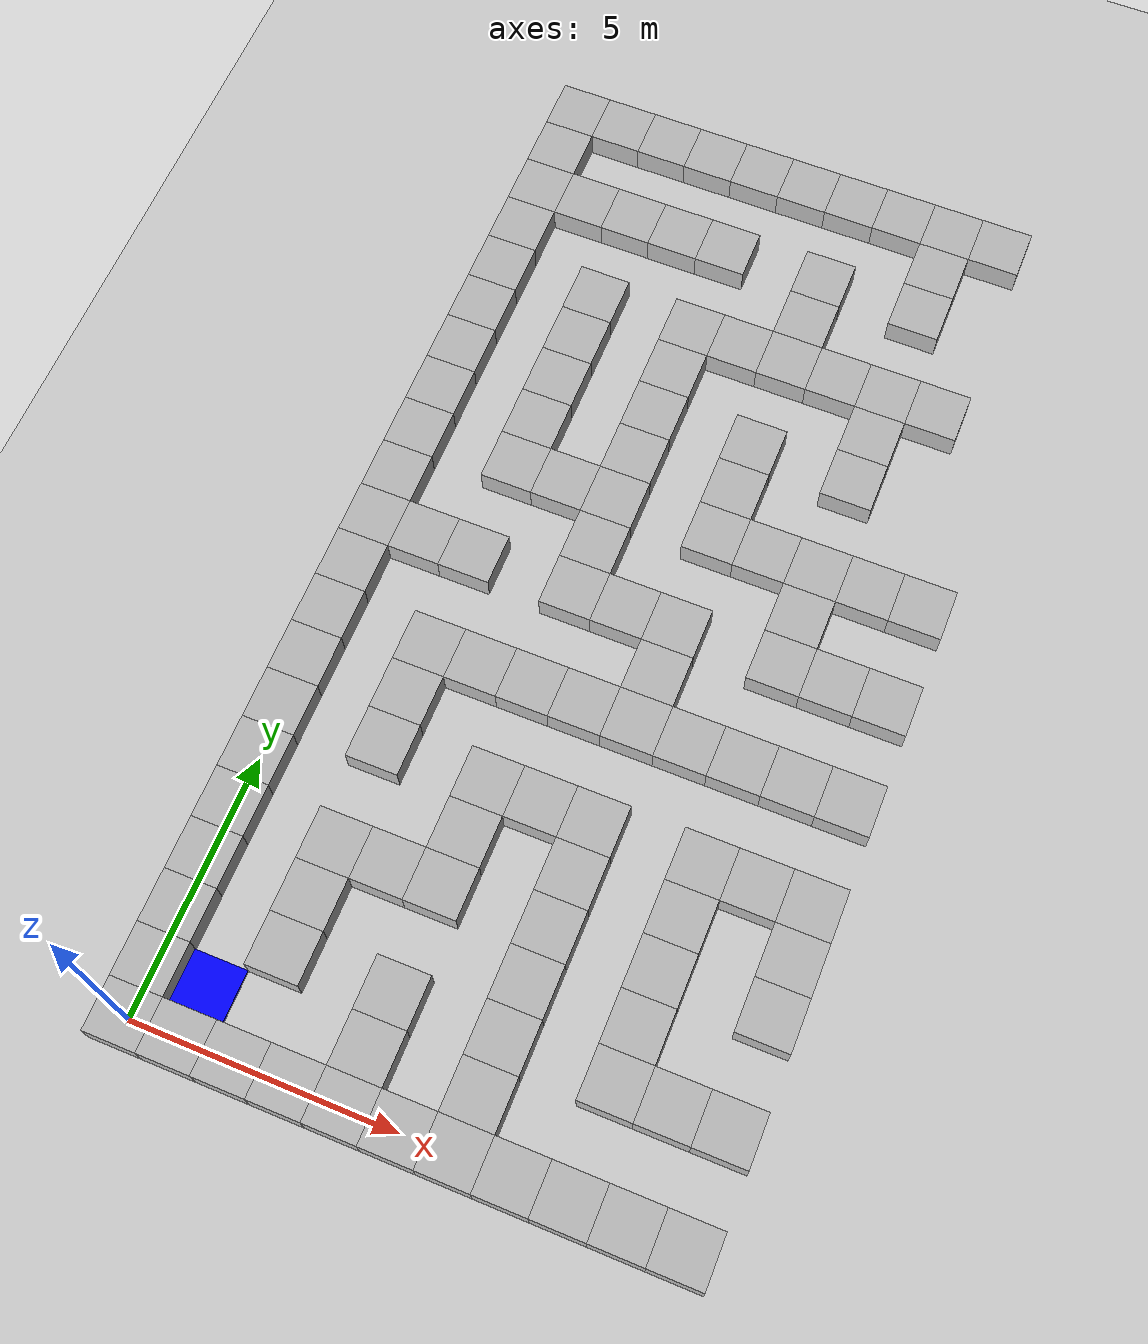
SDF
<sdf version="1.7">
 <world name="maze_world">
  <include><uri>model://ground_plane</uri></include>
  <include><uri>model://sun</uri></include>
  <model name="wall_0_0">
   <static>true</static>
   <link name="link">
    <collision name="collision"><geometry><box><size>1 1 1</size></box></geometry></collision>
    <visual name="visual"><geometry><box><size>1 1 1</size></box></geometry></visual>
   </link>
  </model>
  <model name="wall_1_0">
   <static>true</static>
   <pose>1 0 0 0 0 0</pose>
   <link name="link">
    <collision name="collision"><geometry><box><size>1 1 1</size></box></geometry></collision>
    <visual name="visual"><geometry><box><size>1 1 1</size></box></geometry></visual>
   </link>
  </model>
  <model name="wall_2_0">
   <static>true</static>
   <pose>2 0 0 0 0 0</pose>
   <link name="link">
    <collision name="collision"><geometry><box><size>1 1 1</size></box></geometry></collision>
    <visual name="visual"><geometry><box><size>1 1 1</size></box></geometry></visual>
   </link>
  </model>
  <model name="wall_3_0">
   <static>true</static>
   <pose>3 0 0 0 0 0</pose>
   <link name="link">
    <collision name="collision"><geometry><box><size>1 1 1</size></box></geometry></collision>
    <visual name="visual"><geometry><box><size>1 1 1</size></box></geometry></visual>
   </link>
  </model>
  <model name="wall_4_0">
   <static>true</static>
   <pose>4 0 0 0 0 0</pose>
   <link name="link">
    <collision name="collision"><geometry><box><size>1 1 1</size></box></geometry></collision>
    <visual name="visual"><geometry><box><size>1 1 1</size></box></geometry></visual>
   </link>
  </model>
  <model name="wall_5_0">
   <static>true</static>
   <pose>5 0 0 0 0 0</pose>
   <link name="link">
    <collision name="collision"><geometry><box><size>1 1 1</size></box></geometry></collision>
    <visual name="visual"><geometry><box><size>1 1 1</size></box></geometry></visual>
   </link>
  </model>
  <model name="wall_6_0">
   <static>true</static>
   <pose>6 0 0 0 0 0</pose>
   <link name="link">
    <collision name="collision"><geometry><box><size>1 1 1</size></box></geometry></collision>
    <visual name="visual"><geometry><box><size>1 1 1</size></box></geometry></visual>
   </link>
  </model>
  <model name="wall_7_0">
   <static>true</static>
   <pose>7 0 0 0 0 0</pose>
   <link name="link">
    <collision name="collision"><geometry><box><size>1 1 1</size></box></geometry></collision>
    <visual name="visual"><geometry><box><size>1 1 1</size></box></geometry></visual>
   </link>
  </model>
  <model name="wall_8_0">
   <static>true</static>
   <pose>8 0 0 0 0 0</pose>
   <link name="link">
    <collision name="collision"><geometry><box><size>1 1 1</size></box></geometry></collision>
    <visual name="visual"><geometry><box><size>1 1 1</size></box></geometry></visual>
   </link>
  </model>
  <model name="wall_9_0">
   <static>true</static>
   <pose>9 0 0 0 0 0</pose>
   <link name="link">
    <collision name="collision"><geometry><box><size>1 1 1</size></box></geometry></collision>
    <visual name="visual"><geometry><box><size>1 1 1</size></box></geometry></visual>
   </link>
  </model>
  <model name="wall_10_0">
   <static>true</static>
   <pose>10 0 0 0 0 0</pose>
   <link name="link">
    <collision name="collision"><geometry><box><size>1 1 1</size></box></geometry></collision>
    <visual name="visual"><geometry><box><size>1 1 1</size></box></geometry></visual>
   </link>
  </model>
  <model name="wall_0_1">
   <static>true</static>
   <pose>0 1 0 0 0 0</pose>
   <link name="link">
    <collision name="collision"><geometry><box><size>1 1 1</size></box></geometry></collision>
    <visual name="visual"><geometry><box><size>1 1 1</size></box></geometry></visual>
   </link>
  </model>
  <model name="start_1_1">
   <static>true</static>
   <pose>1 1 0 0 0 0</pose>
   <link name="link">
    <collision name="collision"><geometry><box><size>1 1 0.001</size></box></geometry></collision>
    <visual name="visual">
     <geometry><box><size>1 1 0.1</size></box></geometry>
     <material><ambient>0 0 1 1</ambient></material>
    </visual>
   </link>
  </model>
  <model name="wall_4_1">
   <static>true</static>
   <pose>4 1 0 0 0 0</pose>
   <link name="link">
    <collision name="collision"><geometry><box><size>1 1 1</size></box></geometry></collision>
    <visual name="visual"><geometry><box><size>1 1 1</size></box></geometry></visual>
   </link>
  </model>
  <model name="wall_6_1">
   <static>true</static>
   <pose>6 1 0 0 0 0</pose>
   <link name="link">
    <collision name="collision"><geometry><box><size>1 1 1</size></box></geometry></collision>
    <visual name="visual"><geometry><box><size>1 1 1</size></box></geometry></visual>
   </link>
  </model>
  <model name="wall_0_2">
   <static>true</static>
   <pose>0 2 0 0 0 0</pose>
   <link name="link">
    <collision name="collision"><geometry><box><size>1 1 1</size></box></geometry></collision>
    <visual name="visual"><geometry><box><size>1 1 1</size></box></geometry></visual>
   </link>
  </model>
  <model name="wall_2_2">
   <static>true</static>
   <pose>2 2 0 0 0 0</pose>
   <link name="link">
    <collision name="collision"><geometry><box><size>1 1 1</size></box></geometry></collision>
    <visual name="visual"><geometry><box><size>1 1 1</size></box></geometry></visual>
   </link>
  </model>
  <model name="wall_4_2">
   <static>true</static>
   <pose>4 2 0 0 0 0</pose>
   <link name="link">
    <collision name="collision"><geometry><box><size>1 1 1</size></box></geometry></collision>
    <visual name="visual"><geometry><box><size>1 1 1</size></box></geometry></visual>
   </link>
  </model>
  <model name="wall_6_2">
   <static>true</static>
   <pose>6 2 0 0 0 0</pose>
   <link name="link">
    <collision name="collision"><geometry><box><size>1 1 1</size></box></geometry></collision>
    <visual name="visual"><geometry><box><size>1 1 1</size></box></geometry></visual>
   </link>
  </model>
  <model name="wall_8_2">
   <static>true</static>
   <pose>8 2 0 0 0 0</pose>
   <link name="link">
    <collision name="collision"><geometry><box><size>1 1 1</size></box></geometry></collision>
    <visual name="visual"><geometry><box><size>1 1 1</size></box></geometry></visual>
   </link>
  </model>
  <model name="wall_9_2">
   <static>true</static>
   <pose>9 2 0 0 0 0</pose>
   <link name="link">
    <collision name="collision"><geometry><box><size>1 1 1</size></box></geometry></collision>
    <visual name="visual"><geometry><box><size>1 1 1</size></box></geometry></visual>
   </link>
  </model>
  <model name="wall_10_2">
   <static>true</static>
   <pose>10 2 0 0 0 0</pose>
   <link name="link">
    <collision name="collision"><geometry><box><size>1 1 1</size></box></geometry></collision>
    <visual name="visual"><geometry><box><size>1 1 1</size></box></geometry></visual>
   </link>
  </model>
  <model name="wall_0_3">
   <static>true</static>
   <pose>0 3 0 0 0 0</pose>
   <link name="link">
    <collision name="collision"><geometry><box><size>1 1 1</size></box></geometry></collision>
    <visual name="visual"><geometry><box><size>1 1 1</size></box></geometry></visual>
   </link>
  </model>
  <model name="wall_2_3">
   <static>true</static>
   <pose>2 3 0 0 0 0</pose>
   <link name="link">
    <collision name="collision"><geometry><box><size>1 1 1</size></box></geometry></collision>
    <visual name="visual"><geometry><box><size>1 1 1</size></box></geometry></visual>
   </link>
  </model>
  <model name="wall_6_3">
   <static>true</static>
   <pose>6 3 0 0 0 0</pose>
   <link name="link">
    <collision name="collision"><geometry><box><size>1 1 1</size></box></geometry></collision>
    <visual name="visual"><geometry><box><size>1 1 1</size></box></geometry></visual>
   </link>
  </model>
  <model name="wall_8_3">
   <static>true</static>
   <pose>8 3 0 0 0 0</pose>
   <link name="link">
    <collision name="collision"><geometry><box><size>1 1 1</size></box></geometry></collision>
    <visual name="visual"><geometry><box><size>1 1 1</size></box></geometry></visual>
   </link>
  </model>
  <model name="wall_0_4">
   <static>true</static>
   <pose>0 4 0 0 0 0</pose>
   <link name="link">
    <collision name="collision"><geometry><box><size>1 1 1</size></box></geometry></collision>
    <visual name="visual"><geometry><box><size>1 1 1</size></box></geometry></visual>
   </link>
  </model>
  <model name="wall_2_4">
   <static>true</static>
   <pose>2 4 0 0 0 0</pose>
   <link name="link">
    <collision name="collision"><geometry><box><size>1 1 1</size></box></geometry></collision>
    <visual name="visual"><geometry><box><size>1 1 1</size></box></geometry></visual>
   </link>
  </model>
  <model name="wall_3_4">
   <static>true</static>
   <pose>3 4 0 0 0 0</pose>
   <link name="link">
    <collision name="collision"><geometry><box><size>1 1 1</size></box></geometry></collision>
    <visual name="visual"><geometry><box><size>1 1 1</size></box></geometry></visual>
   </link>
  </model>
  <model name="wall_4_4">
   <static>true</static>
   <pose>4 4 0 0 0 0</pose>
   <link name="link">
    <collision name="collision"><geometry><box><size>1 1 1</size></box></geometry></collision>
    <visual name="visual"><geometry><box><size>1 1 1</size></box></geometry></visual>
   </link>
  </model>
  <model name="wall_6_4">
   <static>true</static>
   <pose>6 4 0 0 0 0</pose>
   <link name="link">
    <collision name="collision"><geometry><box><size>1 1 1</size></box></geometry></collision>
    <visual name="visual"><geometry><box><size>1 1 1</size></box></geometry></visual>
   </link>
  </model>
  <model name="wall_8_4">
   <static>true</static>
   <pose>8 4 0 0 0 0</pose>
   <link name="link">
    <collision name="collision"><geometry><box><size>1 1 1</size></box></geometry></collision>
    <visual name="visual"><geometry><box><size>1 1 1</size></box></geometry></visual>
   </link>
  </model>
  <model name="wall_10_4">
   <static>true</static>
   <pose>10 4 0 0 0 0</pose>
   <link name="link">
    <collision name="collision"><geometry><box><size>1 1 1</size></box></geometry></collision>
    <visual name="visual"><geometry><box><size>1 1 1</size></box></geometry></visual>
   </link>
  </model>
  <model name="wall_0_5">
   <static>true</static>
   <pose>0 5 0 0 0 0</pose>
   <link name="link">
    <collision name="collision"><geometry><box><size>1 1 1</size></box></geometry></collision>
    <visual name="visual"><geometry><box><size>1 1 1</size></box></geometry></visual>
   </link>
  </model>
  <model name="wall_4_5">
   <static>true</static>
   <pose>4 5 0 0 0 0</pose>
   <link name="link">
    <collision name="collision"><geometry><box><size>1 1 1</size></box></geometry></collision>
    <visual name="visual"><geometry><box><size>1 1 1</size></box></geometry></visual>
   </link>
  </model>
  <model name="wall_6_5">
   <static>true</static>
   <pose>6 5 0 0 0 0</pose>
   <link name="link">
    <collision name="collision"><geometry><box><size>1 1 1</size></box></geometry></collision>
    <visual name="visual"><geometry><box><size>1 1 1</size></box></geometry></visual>
   </link>
  </model>
  <model name="wall_8_5">
   <static>true</static>
   <pose>8 5 0 0 0 0</pose>
   <link name="link">
    <collision name="collision"><geometry><box><size>1 1 1</size></box></geometry></collision>
    <visual name="visual"><geometry><box><size>1 1 1</size></box></geometry></visual>
   </link>
  </model>
  <model name="wall_10_5">
   <static>true</static>
   <pose>10 5 0 0 0 0</pose>
   <link name="link">
    <collision name="collision"><geometry><box><size>1 1 1</size></box></geometry></collision>
    <visual name="visual"><geometry><box><size>1 1 1</size></box></geometry></visual>
   </link>
  </model>
  <model name="wall_0_6">
   <static>true</static>
   <pose>0 6 0 0 0 0</pose>
   <link name="link">
    <collision name="collision"><geometry><box><size>1 1 1</size></box></geometry></collision>
    <visual name="visual"><geometry><box><size>1 1 1</size></box></geometry></visual>
   </link>
  </model>
  <model name="wall_2_6">
   <static>true</static>
   <pose>2 6 0 0 0 0</pose>
   <link name="link">
    <collision name="collision"><geometry><box><size>1 1 1</size></box></geometry></collision>
    <visual name="visual"><geometry><box><size>1 1 1</size></box></geometry></visual>
   </link>
  </model>
  <model name="wall_4_6">
   <static>true</static>
   <pose>4 6 0 0 0 0</pose>
   <link name="link">
    <collision name="collision"><geometry><box><size>1 1 1</size></box></geometry></collision>
    <visual name="visual"><geometry><box><size>1 1 1</size></box></geometry></visual>
   </link>
  </model>
  <model name="wall_5_6">
   <static>true</static>
   <pose>5 6 0 0 0 0</pose>
   <link name="link">
    <collision name="collision"><geometry><box><size>1 1 1</size></box></geometry></collision>
    <visual name="visual"><geometry><box><size>1 1 1</size></box></geometry></visual>
   </link>
  </model>
  <model name="wall_6_6">
   <static>true</static>
   <pose>6 6 0 0 0 0</pose>
   <link name="link">
    <collision name="collision"><geometry><box><size>1 1 1</size></box></geometry></collision>
    <visual name="visual"><geometry><box><size>1 1 1</size></box></geometry></visual>
   </link>
  </model>
  <model name="wall_8_6">
   <static>true</static>
   <pose>8 6 0 0 0 0</pose>
   <link name="link">
    <collision name="collision"><geometry><box><size>1 1 1</size></box></geometry></collision>
    <visual name="visual"><geometry><box><size>1 1 1</size></box></geometry></visual>
   </link>
  </model>
  <model name="wall_9_6">
   <static>true</static>
   <pose>9 6 0 0 0 0</pose>
   <link name="link">
    <collision name="collision"><geometry><box><size>1 1 1</size></box></geometry></collision>
    <visual name="visual"><geometry><box><size>1 1 1</size></box></geometry></visual>
   </link>
  </model>
  <model name="wall_10_6">
   <static>true</static>
   <pose>10 6 0 0 0 0</pose>
   <link name="link">
    <collision name="collision"><geometry><box><size>1 1 1</size></box></geometry></collision>
    <visual name="visual"><geometry><box><size>1 1 1</size></box></geometry></visual>
   </link>
  </model>
  <model name="wall_0_7">
   <static>true</static>
   <pose>0 7 0 0 0 0</pose>
   <link name="link">
    <collision name="collision"><geometry><box><size>1 1 1</size></box></geometry></collision>
    <visual name="visual"><geometry><box><size>1 1 1</size></box></geometry></visual>
   </link>
  </model>
  <model name="wall_2_7">
   <static>true</static>
   <pose>2 7 0 0 0 0</pose>
   <link name="link">
    <collision name="collision"><geometry><box><size>1 1 1</size></box></geometry></collision>
    <visual name="visual"><geometry><box><size>1 1 1</size></box></geometry></visual>
   </link>
  </model>
  <model name="wall_0_8">
   <static>true</static>
   <pose>0 8 0 0 0 0</pose>
   <link name="link">
    <collision name="collision"><geometry><box><size>1 1 1</size></box></geometry></collision>
    <visual name="visual"><geometry><box><size>1 1 1</size></box></geometry></visual>
   </link>
  </model>
  <model name="wall_2_8">
   <static>true</static>
   <pose>2 8 0 0 0 0</pose>
   <link name="link">
    <collision name="collision"><geometry><box><size>1 1 1</size></box></geometry></collision>
    <visual name="visual"><geometry><box><size>1 1 1</size></box></geometry></visual>
   </link>
  </model>
  <model name="wall_3_8">
   <static>true</static>
   <pose>3 8 0 0 0 0</pose>
   <link name="link">
    <collision name="collision"><geometry><box><size>1 1 1</size></box></geometry></collision>
    <visual name="visual"><geometry><box><size>1 1 1</size></box></geometry></visual>
   </link>
  </model>
  <model name="wall_4_8">
   <static>true</static>
   <pose>4 8 0 0 0 0</pose>
   <link name="link">
    <collision name="collision"><geometry><box><size>1 1 1</size></box></geometry></collision>
    <visual name="visual"><geometry><box><size>1 1 1</size></box></geometry></visual>
   </link>
  </model>
  <model name="wall_5_8">
   <static>true</static>
   <pose>5 8 0 0 0 0</pose>
   <link name="link">
    <collision name="collision"><geometry><box><size>1 1 1</size></box></geometry></collision>
    <visual name="visual"><geometry><box><size>1 1 1</size></box></geometry></visual>
   </link>
  </model>
  <model name="wall_6_8">
   <static>true</static>
   <pose>6 8 0 0 0 0</pose>
   <link name="link">
    <collision name="collision"><geometry><box><size>1 1 1</size></box></geometry></collision>
    <visual name="visual"><geometry><box><size>1 1 1</size></box></geometry></visual>
   </link>
  </model>
  <model name="wall_7_8">
   <static>true</static>
   <pose>7 8 0 0 0 0</pose>
   <link name="link">
    <collision name="collision"><geometry><box><size>1 1 1</size></box></geometry></collision>
    <visual name="visual"><geometry><box><size>1 1 1</size></box></geometry></visual>
   </link>
  </model>
  <model name="wall_8_8">
   <static>true</static>
   <pose>8 8 0 0 0 0</pose>
   <link name="link">
    <collision name="collision"><geometry><box><size>1 1 1</size></box></geometry></collision>
    <visual name="visual"><geometry><box><size>1 1 1</size></box></geometry></visual>
   </link>
  </model>
  <model name="wall_9_8">
   <static>true</static>
   <pose>9 8 0 0 0 0</pose>
   <link name="link">
    <collision name="collision"><geometry><box><size>1 1 1</size></box></geometry></collision>
    <visual name="visual"><geometry><box><size>1 1 1</size></box></geometry></visual>
   </link>
  </model>
  <model name="wall_10_8">
   <static>true</static>
   <pose>10 8 0 0 0 0</pose>
   <link name="link">
    <collision name="collision"><geometry><box><size>1 1 1</size></box></geometry></collision>
    <visual name="visual"><geometry><box><size>1 1 1</size></box></geometry></visual>
   </link>
  </model>
  <model name="wall_0_9">
   <static>true</static>
   <pose>0 9 0 0 0 0</pose>
   <link name="link">
    <collision name="collision"><geometry><box><size>1 1 1</size></box></geometry></collision>
    <visual name="visual"><geometry><box><size>1 1 1</size></box></geometry></visual>
   </link>
  </model>
  <model name="wall_6_9">
   <static>true</static>
   <pose>6 9 0 0 0 0</pose>
   <link name="link">
    <collision name="collision"><geometry><box><size>1 1 1</size></box></geometry></collision>
    <visual name="visual"><geometry><box><size>1 1 1</size></box></geometry></visual>
   </link>
  </model>
  <model name="wall_0_10">
   <static>true</static>
   <pose>0 10 0 0 0 0</pose>
   <link name="link">
    <collision name="collision"><geometry><box><size>1 1 1</size></box></geometry></collision>
    <visual name="visual"><geometry><box><size>1 1 1</size></box></geometry></visual>
   </link>
  </model>
  <model name="wall_1_10">
   <static>true</static>
   <pose>1 10 0 0 0 0</pose>
   <link name="link">
    <collision name="collision"><geometry><box><size>1 1 1</size></box></geometry></collision>
    <visual name="visual"><geometry><box><size>1 1 1</size></box></geometry></visual>
   </link>
  </model>
  <model name="wall_2_10">
   <static>true</static>
   <pose>2 10 0 0 0 0</pose>
   <link name="link">
    <collision name="collision"><geometry><box><size>1 1 1</size></box></geometry></collision>
    <visual name="visual"><geometry><box><size>1 1 1</size></box></geometry></visual>
   </link>
  </model>
  <model name="wall_4_10">
   <static>true</static>
   <pose>4 10 0 0 0 0</pose>
   <link name="link">
    <collision name="collision"><geometry><box><size>1 1 1</size></box></geometry></collision>
    <visual name="visual"><geometry><box><size>1 1 1</size></box></geometry></visual>
   </link>
  </model>
  <model name="wall_5_10">
   <static>true</static>
   <pose>5 10 0 0 0 0</pose>
   <link name="link">
    <collision name="collision"><geometry><box><size>1 1 1</size></box></geometry></collision>
    <visual name="visual"><geometry><box><size>1 1 1</size></box></geometry></visual>
   </link>
  </model>
  <model name="wall_6_10">
   <static>true</static>
   <pose>6 10 0 0 0 0</pose>
   <link name="link">
    <collision name="collision"><geometry><box><size>1 1 1</size></box></geometry></collision>
    <visual name="visual"><geometry><box><size>1 1 1</size></box></geometry></visual>
   </link>
  </model>
  <model name="wall_8_10">
   <static>true</static>
   <pose>8 10 0 0 0 0</pose>
   <link name="link">
    <collision name="collision"><geometry><box><size>1 1 1</size></box></geometry></collision>
    <visual name="visual"><geometry><box><size>1 1 1</size></box></geometry></visual>
   </link>
  </model>
  <model name="wall_9_10">
   <static>true</static>
   <pose>9 10 0 0 0 0</pose>
   <link name="link">
    <collision name="collision"><geometry><box><size>1 1 1</size></box></geometry></collision>
    <visual name="visual"><geometry><box><size>1 1 1</size></box></geometry></visual>
   </link>
  </model>
  <model name="wall_10_10">
   <static>true</static>
   <pose>10 10 0 0 0 0</pose>
   <link name="link">
    <collision name="collision"><geometry><box><size>1 1 1</size></box></geometry></collision>
    <visual name="visual"><geometry><box><size>1 1 1</size></box></geometry></visual>
   </link>
  </model>
  <model name="wall_0_11">
   <static>true</static>
   <pose>0 11 0 0 0 0</pose>
   <link name="link">
    <collision name="collision"><geometry><box><size>1 1 1</size></box></geometry></collision>
    <visual name="visual"><geometry><box><size>1 1 1</size></box></geometry></visual>
   </link>
  </model>
  <model name="wall_4_11">
   <static>true</static>
   <pose>4 11 0 0 0 0</pose>
   <link name="link">
    <collision name="collision"><geometry><box><size>1 1 1</size></box></geometry></collision>
    <visual name="visual"><geometry><box><size>1 1 1</size></box></geometry></visual>
   </link>
  </model>
  <model name="wall_8_11">
   <static>true</static>
   <pose>8 11 0 0 0 0</pose>
   <link name="link">
    <collision name="collision"><geometry><box><size>1 1 1</size></box></geometry></collision>
    <visual name="visual"><geometry><box><size>1 1 1</size></box></geometry></visual>
   </link>
  </model>
  <model name="wall_0_12">
   <static>true</static>
   <pose>0 12 0 0 0 0</pose>
   <link name="link">
    <collision name="collision"><geometry><box><size>1 1 1</size></box></geometry></collision>
    <visual name="visual"><geometry><box><size>1 1 1</size></box></geometry></visual>
   </link>
  </model>
  <model name="wall_2_12">
   <static>true</static>
   <pose>2 12 0 0 0 0</pose>
   <link name="link">
    <collision name="collision"><geometry><box><size>1 1 1</size></box></geometry></collision>
    <visual name="visual"><geometry><box><size>1 1 1</size></box></geometry></visual>
   </link>
  </model>
  <model name="wall_3_12">
   <static>true</static>
   <pose>3 12 0 0 0 0</pose>
   <link name="link">
    <collision name="collision"><geometry><box><size>1 1 1</size></box></geometry></collision>
    <visual name="visual"><geometry><box><size>1 1 1</size></box></geometry></visual>
   </link>
  </model>
  <model name="wall_4_12">
   <static>true</static>
   <pose>4 12 0 0 0 0</pose>
   <link name="link">
    <collision name="collision"><geometry><box><size>1 1 1</size></box></geometry></collision>
    <visual name="visual"><geometry><box><size>1 1 1</size></box></geometry></visual>
   </link>
  </model>
  <model name="wall_6_12">
   <static>true</static>
   <pose>6 12 0 0 0 0</pose>
   <link name="link">
    <collision name="collision"><geometry><box><size>1 1 1</size></box></geometry></collision>
    <visual name="visual"><geometry><box><size>1 1 1</size></box></geometry></visual>
   </link>
  </model>
  <model name="wall_7_12">
   <static>true</static>
   <pose>7 12 0 0 0 0</pose>
   <link name="link">
    <collision name="collision"><geometry><box><size>1 1 1</size></box></geometry></collision>
    <visual name="visual"><geometry><box><size>1 1 1</size></box></geometry></visual>
   </link>
  </model>
  <model name="wall_8_12">
   <static>true</static>
   <pose>8 12 0 0 0 0</pose>
   <link name="link">
    <collision name="collision"><geometry><box><size>1 1 1</size></box></geometry></collision>
    <visual name="visual"><geometry><box><size>1 1 1</size></box></geometry></visual>
   </link>
  </model>
  <model name="wall_9_12">
   <static>true</static>
   <pose>9 12 0 0 0 0</pose>
   <link name="link">
    <collision name="collision"><geometry><box><size>1 1 1</size></box></geometry></collision>
    <visual name="visual"><geometry><box><size>1 1 1</size></box></geometry></visual>
   </link>
  </model>
  <model name="wall_10_12">
   <static>true</static>
   <pose>10 12 0 0 0 0</pose>
   <link name="link">
    <collision name="collision"><geometry><box><size>1 1 1</size></box></geometry></collision>
    <visual name="visual"><geometry><box><size>1 1 1</size></box></geometry></visual>
   </link>
  </model>
  <model name="wall_0_13">
   <static>true</static>
   <pose>0 13 0 0 0 0</pose>
   <link name="link">
    <collision name="collision"><geometry><box><size>1 1 1</size></box></geometry></collision>
    <visual name="visual"><geometry><box><size>1 1 1</size></box></geometry></visual>
   </link>
  </model>
  <model name="wall_2_13">
   <static>true</static>
   <pose>2 13 0 0 0 0</pose>
   <link name="link">
    <collision name="collision"><geometry><box><size>1 1 1</size></box></geometry></collision>
    <visual name="visual"><geometry><box><size>1 1 1</size></box></geometry></visual>
   </link>
  </model>
  <model name="wall_4_13">
   <static>true</static>
   <pose>4 13 0 0 0 0</pose>
   <link name="link">
    <collision name="collision"><geometry><box><size>1 1 1</size></box></geometry></collision>
    <visual name="visual"><geometry><box><size>1 1 1</size></box></geometry></visual>
   </link>
  </model>
  <model name="wall_6_13">
   <static>true</static>
   <pose>6 13 0 0 0 0</pose>
   <link name="link">
    <collision name="collision"><geometry><box><size>1 1 1</size></box></geometry></collision>
    <visual name="visual"><geometry><box><size>1 1 1</size></box></geometry></visual>
   </link>
  </model>
  <model name="wall_0_14">
   <static>true</static>
   <pose>0 14 0 0 0 0</pose>
   <link name="link">
    <collision name="collision"><geometry><box><size>1 1 1</size></box></geometry></collision>
    <visual name="visual"><geometry><box><size>1 1 1</size></box></geometry></visual>
   </link>
  </model>
  <model name="wall_2_14">
   <static>true</static>
   <pose>2 14 0 0 0 0</pose>
   <link name="link">
    <collision name="collision"><geometry><box><size>1 1 1</size></box></geometry></collision>
    <visual name="visual"><geometry><box><size>1 1 1</size></box></geometry></visual>
   </link>
  </model>
  <model name="wall_4_14">
   <static>true</static>
   <pose>4 14 0 0 0 0</pose>
   <link name="link">
    <collision name="collision"><geometry><box><size>1 1 1</size></box></geometry></collision>
    <visual name="visual"><geometry><box><size>1 1 1</size></box></geometry></visual>
   </link>
  </model>
  <model name="wall_6_14">
   <static>true</static>
   <pose>6 14 0 0 0 0</pose>
   <link name="link">
    <collision name="collision"><geometry><box><size>1 1 1</size></box></geometry></collision>
    <visual name="visual"><geometry><box><size>1 1 1</size></box></geometry></visual>
   </link>
  </model>
  <model name="wall_8_14">
   <static>true</static>
   <pose>8 14 0 0 0 0</pose>
   <link name="link">
    <collision name="collision"><geometry><box><size>1 1 1</size></box></geometry></collision>
    <visual name="visual"><geometry><box><size>1 1 1</size></box></geometry></visual>
   </link>
  </model>
  <model name="wall_0_15">
   <static>true</static>
   <pose>0 15 0 0 0 0</pose>
   <link name="link">
    <collision name="collision"><geometry><box><size>1 1 1</size></box></geometry></collision>
    <visual name="visual"><geometry><box><size>1 1 1</size></box></geometry></visual>
   </link>
  </model>
  <model name="wall_2_15">
   <static>true</static>
   <pose>2 15 0 0 0 0</pose>
   <link name="link">
    <collision name="collision"><geometry><box><size>1 1 1</size></box></geometry></collision>
    <visual name="visual"><geometry><box><size>1 1 1</size></box></geometry></visual>
   </link>
  </model>
  <model name="wall_4_15">
   <static>true</static>
   <pose>4 15 0 0 0 0</pose>
   <link name="link">
    <collision name="collision"><geometry><box><size>1 1 1</size></box></geometry></collision>
    <visual name="visual"><geometry><box><size>1 1 1</size></box></geometry></visual>
   </link>
  </model>
  <model name="wall_8_15">
   <static>true</static>
   <pose>8 15 0 0 0 0</pose>
   <link name="link">
    <collision name="collision"><geometry><box><size>1 1 1</size></box></geometry></collision>
    <visual name="visual"><geometry><box><size>1 1 1</size></box></geometry></visual>
   </link>
  </model>
  <model name="wall_0_16">
   <static>true</static>
   <pose>0 16 0 0 0 0</pose>
   <link name="link">
    <collision name="collision"><geometry><box><size>1 1 1</size></box></geometry></collision>
    <visual name="visual"><geometry><box><size>1 1 1</size></box></geometry></visual>
   </link>
  </model>
  <model name="wall_2_16">
   <static>true</static>
   <pose>2 16 0 0 0 0</pose>
   <link name="link">
    <collision name="collision"><geometry><box><size>1 1 1</size></box></geometry></collision>
    <visual name="visual"><geometry><box><size>1 1 1</size></box></geometry></visual>
   </link>
  </model>
  <model name="wall_4_16">
   <static>true</static>
   <pose>4 16 0 0 0 0</pose>
   <link name="link">
    <collision name="collision"><geometry><box><size>1 1 1</size></box></geometry></collision>
    <visual name="visual"><geometry><box><size>1 1 1</size></box></geometry></visual>
   </link>
  </model>
  <model name="wall_5_16">
   <static>true</static>
   <pose>5 16 0 0 0 0</pose>
   <link name="link">
    <collision name="collision"><geometry><box><size>1 1 1</size></box></geometry></collision>
    <visual name="visual"><geometry><box><size>1 1 1</size></box></geometry></visual>
   </link>
  </model>
  <model name="wall_6_16">
   <static>true</static>
   <pose>6 16 0 0 0 0</pose>
   <link name="link">
    <collision name="collision"><geometry><box><size>1 1 1</size></box></geometry></collision>
    <visual name="visual"><geometry><box><size>1 1 1</size></box></geometry></visual>
   </link>
  </model>
  <model name="wall_7_16">
   <static>true</static>
   <pose>7 16 0 0 0 0</pose>
   <link name="link">
    <collision name="collision"><geometry><box><size>1 1 1</size></box></geometry></collision>
    <visual name="visual"><geometry><box><size>1 1 1</size></box></geometry></visual>
   </link>
  </model>
  <model name="wall_8_16">
   <static>true</static>
   <pose>8 16 0 0 0 0</pose>
   <link name="link">
    <collision name="collision"><geometry><box><size>1 1 1</size></box></geometry></collision>
    <visual name="visual"><geometry><box><size>1 1 1</size></box></geometry></visual>
   </link>
  </model>
  <model name="wall_9_16">
   <static>true</static>
   <pose>9 16 0 0 0 0</pose>
   <link name="link">
    <collision name="collision"><geometry><box><size>1 1 1</size></box></geometry></collision>
    <visual name="visual"><geometry><box><size>1 1 1</size></box></geometry></visual>
   </link>
  </model>
  <model name="wall_0_17">
   <static>true</static>
   <pose>0 17 0 0 0 0</pose>
   <link name="link">
    <collision name="collision"><geometry><box><size>1 1 1</size></box></geometry></collision>
    <visual name="visual"><geometry><box><size>1 1 1</size></box></geometry></visual>
   </link>
  </model>
  <model name="wall_6_17">
   <static>true</static>
   <pose>6 17 0 0 0 0</pose>
   <link name="link">
    <collision name="collision"><geometry><box><size>1 1 1</size></box></geometry></collision>
    <visual name="visual"><geometry><box><size>1 1 1</size></box></geometry></visual>
   </link>
  </model>
  <model name="wall_0_18">
   <static>true</static>
   <pose>0 18 0 0 0 0</pose>
   <link name="link">
    <collision name="collision"><geometry><box><size>1 1 1</size></box></geometry></collision>
    <visual name="visual"><geometry><box><size>1 1 1</size></box></geometry></visual>
   </link>
  </model>
  <model name="wall_1_18">
   <static>true</static>
   <pose>1 18 0 0 0 0</pose>
   <link name="link">
    <collision name="collision"><geometry><box><size>1 1 1</size></box></geometry></collision>
    <visual name="visual"><geometry><box><size>1 1 1</size></box></geometry></visual>
   </link>
  </model>
  <model name="wall_2_18">
   <static>true</static>
   <pose>2 18 0 0 0 0</pose>
   <link name="link">
    <collision name="collision"><geometry><box><size>1 1 1</size></box></geometry></collision>
    <visual name="visual"><geometry><box><size>1 1 1</size></box></geometry></visual>
   </link>
  </model>
  <model name="wall_3_18">
   <static>true</static>
   <pose>3 18 0 0 0 0</pose>
   <link name="link">
    <collision name="collision"><geometry><box><size>1 1 1</size></box></geometry></collision>
    <visual name="visual"><geometry><box><size>1 1 1</size></box></geometry></visual>
   </link>
  </model>
  <model name="wall_4_18">
   <static>true</static>
   <pose>4 18 0 0 0 0</pose>
   <link name="link">
    <collision name="collision"><geometry><box><size>1 1 1</size></box></geometry></collision>
    <visual name="visual"><geometry><box><size>1 1 1</size></box></geometry></visual>
   </link>
  </model>
  <model name="wall_6_18">
   <static>true</static>
   <pose>6 18 0 0 0 0</pose>
   <link name="link">
    <collision name="collision"><geometry><box><size>1 1 1</size></box></geometry></collision>
    <visual name="visual"><geometry><box><size>1 1 1</size></box></geometry></visual>
   </link>
  </model>
  <model name="wall_8_18">
   <static>true</static>
   <pose>8 18 0 0 0 0</pose>
   <link name="link">
    <collision name="collision"><geometry><box><size>1 1 1</size></box></geometry></collision>
    <visual name="visual"><geometry><box><size>1 1 1</size></box></geometry></visual>
   </link>
  </model>
  <model name="wall_0_19">
   <static>true</static>
   <pose>0 19 0 0 0 0</pose>
   <link name="link">
    <collision name="collision"><geometry><box><size>1 1 1</size></box></geometry></collision>
    <visual name="visual"><geometry><box><size>1 1 1</size></box></geometry></visual>
   </link>
  </model>
  <model name="wall_8_19">
   <static>true</static>
   <pose>8 19 0 0 0 0</pose>
   <link name="link">
    <collision name="collision"><geometry><box><size>1 1 1</size></box></geometry></collision>
    <visual name="visual"><geometry><box><size>1 1 1</size></box></geometry></visual>
   </link>
  </model>
  <model name="wall_0_20">
   <static>true</static>
   <pose>0 20 0 0 0 0</pose>
   <link name="link">
    <collision name="collision"><geometry><box><size>1 1 1</size></box></geometry></collision>
    <visual name="visual"><geometry><box><size>1 1 1</size></box></geometry></visual>
   </link>
  </model>
  <model name="wall_1_20">
   <static>true</static>
   <pose>1 20 0 0 0 0</pose>
   <link name="link">
    <collision name="collision"><geometry><box><size>1 1 1</size></box></geometry></collision>
    <visual name="visual"><geometry><box><size>1 1 1</size></box></geometry></visual>
   </link>
  </model>
  <model name="wall_2_20">
   <static>true</static>
   <pose>2 20 0 0 0 0</pose>
   <link name="link">
    <collision name="collision"><geometry><box><size>1 1 1</size></box></geometry></collision>
    <visual name="visual"><geometry><box><size>1 1 1</size></box></geometry></visual>
   </link>
  </model>
  <model name="wall_3_20">
   <static>true</static>
   <pose>3 20 0 0 0 0</pose>
   <link name="link">
    <collision name="collision"><geometry><box><size>1 1 1</size></box></geometry></collision>
    <visual name="visual"><geometry><box><size>1 1 1</size></box></geometry></visual>
   </link>
  </model>
  <model name="wall_4_20">
   <static>true</static>
   <pose>4 20 0 0 0 0</pose>
   <link name="link">
    <collision name="collision"><geometry><box><size>1 1 1</size></box></geometry></collision>
    <visual name="visual"><geometry><box><size>1 1 1</size></box></geometry></visual>
   </link>
  </model>
  <model name="wall_5_20">
   <static>true</static>
   <pose>5 20 0 0 0 0</pose>
   <link name="link">
    <collision name="collision"><geometry><box><size>1 1 1</size></box></geometry></collision>
    <visual name="visual"><geometry><box><size>1 1 1</size></box></geometry></visual>
   </link>
  </model>
  <model name="wall_6_20">
   <static>true</static>
   <pose>6 20 0 0 0 0</pose>
   <link name="link">
    <collision name="collision"><geometry><box><size>1 1 1</size></box></geometry></collision>
    <visual name="visual"><geometry><box><size>1 1 1</size></box></geometry></visual>
   </link>
  </model>
  <model name="wall_7_20">
   <static>true</static>
   <pose>7 20 0 0 0 0</pose>
   <link name="link">
    <collision name="collision"><geometry><box><size>1 1 1</size></box></geometry></collision>
    <visual name="visual"><geometry><box><size>1 1 1</size></box></geometry></visual>
   </link>
  </model>
  <model name="wall_8_20">
   <static>true</static>
   <pose>8 20 0 0 0 0</pose>
   <link name="link">
    <collision name="collision"><geometry><box><size>1 1 1</size></box></geometry></collision>
    <visual name="visual"><geometry><box><size>1 1 1</size></box></geometry></visual>
   </link>
  </model>
  <model name="wall_9_20">
   <static>true</static>
   <pose>9 20 0 0 0 0</pose>
   <link name="link">
    <collision name="collision"><geometry><box><size>1 1 1</size></box></geometry></collision>
    <visual name="visual"><geometry><box><size>1 1 1</size></box></geometry></visual>
   </link>
  </model>
 </world>
</sdf>
